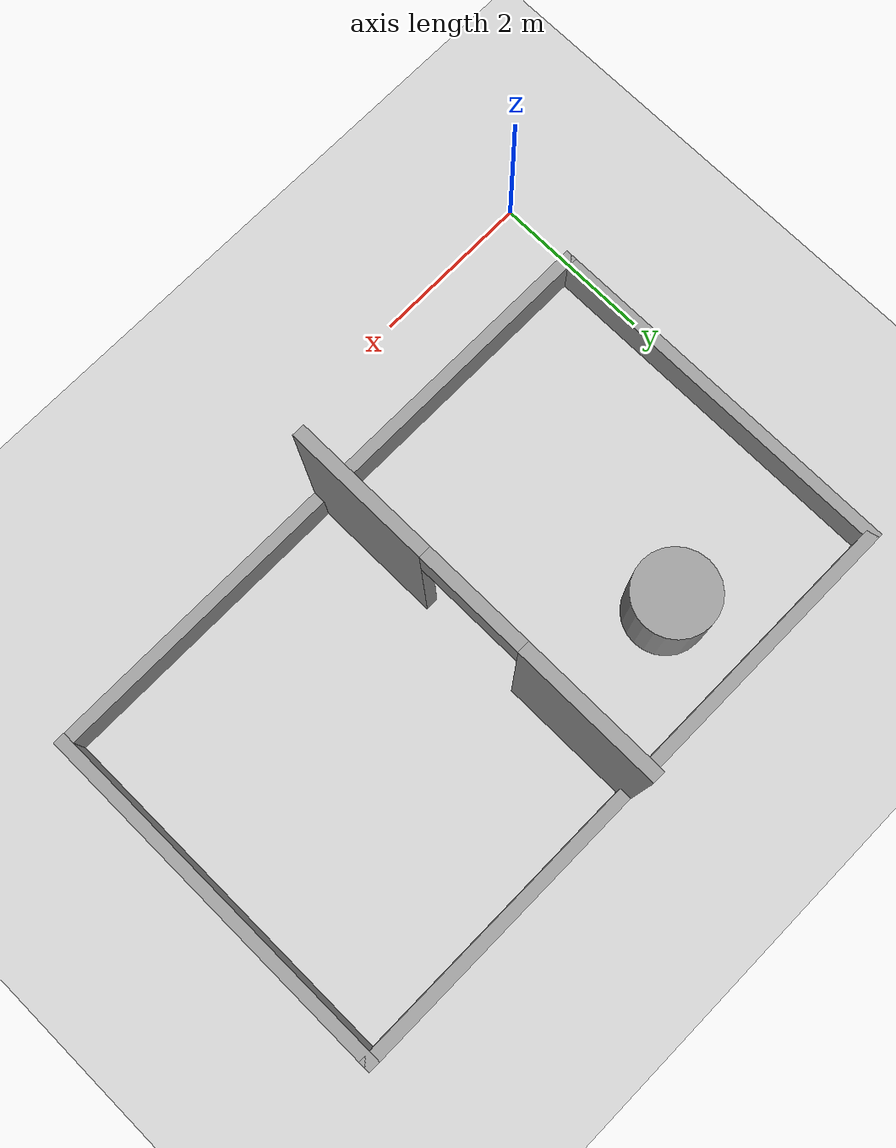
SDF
<sdf version="1.7">
 <world name="default">
  <light name="sun" type="directional">
   <pose>0 0 10 0 -0 0</pose>
   <diffuse>0.8 0.8 0.8 1</diffuse>
   <specular>0.2 0.2 0.2 1</specular>
   <attenuation>
    <range>1000</range>
    <constant>0.9</constant>
    <linear>0.01</linear>
    <quadratic>0.001</quadratic>
   </attenuation>
   <direction>-0.5 0.1 -0.9</direction>
   <spot><inner_angle>0</inner_angle><outer_angle>0</outer_angle><falloff>0</falloff></spot>
  </light>
  <model name="ground_plane">
   <static>1</static>
   <link name="link">
    <collision name="collision">
     <geometry><plane><normal>0 0 1</normal><size>100 100</size></plane></geometry>
     <surface>
      <contact><collide_bitmask>65535</collide_bitmask></contact>
      <friction><ode><mu>100</mu><mu2>50</mu2></ode></friction>
     </surface>
    </collision>
    <visual name="visual">
     <cast_shadows>0</cast_shadows>
     <geometry><plane><normal>0 0 1</normal><size>100 100</size></plane></geometry>
     <material>
      <script><uri>file://media/materials/scripts/gazebo.material</uri><name>Gazebo/Grey</name></script>
     </material>
    </visual>
   </link>
  </model>
  <gravity>0 0 -9.8</gravity>
  <magnetic_field>6e-06 2.3e-05 -4.2e-05</magnetic_field>
  <atmosphere type="adiabatic"/>
  <physics type="ode">
   <max_step_size>0.001</max_step_size>
   <real_time_factor>1</real_time_factor>
   <real_time_update_rate>1000</real_time_update_rate>
  </physics>
  <scene><ambient>0.4 0.4 0.4 1</ambient><background>0.7 0.7 0.7 1</background><shadows>1</shadows></scene>
  <spherical_coordinates>
   <surface_model>EARTH_WGS84</surface_model>
   <latitude_deg>0</latitude_deg>
   <longitude_deg>0</longitude_deg>
   <elevation>0</elevation>
   <heading_deg>0</heading_deg>
  </spherical_coordinates>
  <model name="door_traversal">
   <pose>3.99331 3.31947 0 0 -0 0</pose>
   <link name="Wall_0">
    <collision name="Wall_0_Collision">
     <geometry><box><size>4 0.15 0.5</size></box></geometry>
     <pose>0 0 0.25 0 -0 0</pose>
    </collision>
    <visual name="Wall_0_Visual">
     <pose>0 0 0.25 0 -0 0</pose>
     <geometry><box><size>4 0.15 0.5</size></box></geometry>
     <material>
      <script><uri>file://media/materials/scripts/gazebo.material</uri><name>Gazebo/Grey</name></script>
      <ambient>1 1 1 1</ambient>
     </material>
     <meta><layer>0</layer></meta>
    </visual>
    <pose>-1.925 -2.3 0 0 -0 0</pose>
   </link>
   <link name="Wall_10">
    <collision name="Wall_10_Collision">
     <geometry><box><size>4 0.15 0.5</size></box></geometry>
     <pose>0 0 0.25 0 -0 0</pose>
    </collision>
    <visual name="Wall_10_Visual">
     <pose>0 0 0.25 0 -0 0</pose>
     <geometry><box><size>4 0.15 0.5</size></box></geometry>
     <material>
      <script><uri>file://media/materials/scripts/gazebo.material</uri><name>Gazebo/Grey</name></script>
      <ambient>1 1 1 1</ambient>
     </material>
     <meta><layer>0</layer></meta>
    </visual>
    <pose>1.925 -2.3 0 0 -0 3.14159</pose>
   </link>
   <link name="Wall_11">
    <pose>0 0 0 0 -0 1.5708</pose>
    <visual name="Wall_11_Visual_0">
     <pose>-1.51506 0 1.25 0 -0 0</pose>
     <geometry><box><size>1.71988 0.15 2.5</size></box></geometry>
     <material>
      <script><uri>file://media/materials/scripts/gazebo.material</uri><name>Gazebo/Grey</name></script>
      <ambient>1 1 1 1</ambient>
     </material>
     <meta><layer>0</layer></meta>
    </visual>
    <collision name="Wall_11_Collision_0">
     <geometry><box><size>1.71988 0.15 2.5</size></box></geometry>
     <pose>-1.51506 0 1.25 0 -0 0</pose>
    </collision>
    <visual name="Wall_11_Visual_1">
     <pose>1.50994 0 1.25 0 -0 0</pose>
     <geometry><box><size>1.73012 0.15 2.5</size></box></geometry>
     <material>
      <script><uri>file://media/materials/scripts/gazebo.material</uri><name>Gazebo/Grey</name></script>
      <ambient>1 1 1 1</ambient>
     </material>
     <meta><layer>0</layer></meta>
    </visual>
    <collision name="Wall_11_Collision_1">
     <geometry><box><size>1.73012 0.15 2.5</size></box></geometry>
     <pose>1.50994 0 1.25 0 -0 0</pose>
    </collision>
    <visual name="Wall_11_Visual_2">
     <pose>-0.005122 0 2.25 0 -0 0</pose>
     <geometry><box><size>1.3 0.15 0.5</size></box></geometry>
     <material>
      <script><uri>file://media/materials/scripts/gazebo.material</uri><name>Gazebo/Grey</name></script>
      <ambient>1 1 1 1</ambient>
     </material>
     <meta><layer>0</layer></meta>
    </visual>
    <collision name="Wall_11_Collision_2">
     <geometry><box><size>1.3 0.15 0.5</size></box></geometry>
     <pose>-0.005122 0 2.25 0 -0 0</pose>
    </collision>
   </link>
   <link name="Wall_5">
    <collision name="Wall_5_Collision">
     <geometry><box><size>4.75 0.15 0.5</size></box></geometry>
     <pose>0 0 0.25 0 -0 0</pose>
    </collision>
    <visual name="Wall_5_Visual">
     <pose>0 0 0.25 0 -0 0</pose>
     <geometry><box><size>4.75 0.15 0.5</size></box></geometry>
     <material>
      <script><uri>file://media/materials/scripts/gazebo.material</uri><name>Gazebo/Grey</name></script>
      <ambient>1 1 1 1</ambient>
     </material>
     <meta><layer>0</layer></meta>
    </visual>
    <pose>-3.85 0 0 0 -0 1.5708</pose>
   </link>
   <link name="Wall_7">
    <collision name="Wall_7_Collision">
     <geometry><box><size>4 0.15 0.5</size></box></geometry>
     <pose>0 0 0.25 0 -0 0</pose>
    </collision>
    <visual name="Wall_7_Visual">
     <pose>0 0 0.25 0 -0 0</pose>
     <geometry><box><size>4 0.15 0.5</size></box></geometry>
     <material>
      <script><uri>file://media/materials/scripts/gazebo.material</uri><name>Gazebo/Grey</name></script>
      <ambient>1 1 1 1</ambient>
     </material>
     <meta><layer>0</layer></meta>
    </visual>
    <pose>-1.925 2.3 0 0 -0 0</pose>
   </link>
   <link name="Wall_8">
    <collision name="Wall_8_Collision">
     <geometry><box><size>4 0.15 0.5</size></box></geometry>
     <pose>0 0 0.25 0 -0 0</pose>
    </collision>
    <visual name="Wall_8_Visual">
     <pose>0 0 0.25 0 -0 0</pose>
     <geometry><box><size>4 0.15 0.5</size></box></geometry>
     <material>
      <script><uri>file://media/materials/scripts/gazebo.material</uri><name>Gazebo/Grey</name></script>
      <ambient>1 1 1 1</ambient>
     </material>
     <meta><layer>0</layer></meta>
    </visual>
    <pose>1.925 2.3 0 0 -0 0</pose>
   </link>
   <link name="Wall_9">
    <collision name="Wall_9_Collision">
     <geometry><box><size>4.75 0.15 0.5</size></box></geometry>
     <pose>0 0 0.25 0 -0 0</pose>
    </collision>
    <visual name="Wall_9_Visual">
     <pose>0 0 0.25 0 -0 0</pose>
     <geometry><box><size>4.75 0.15 0.5</size></box></geometry>
     <material>
      <script><uri>file://media/materials/scripts/gazebo.material</uri><name>Gazebo/Grey</name></script>
      <ambient>1 1 1 1</ambient>
     </material>
     <meta><layer>0</layer></meta>
    </visual>
    <pose>3.85 0 0 0 -0 -1.5708</pose>
   </link>
   <static>1</static>
  </model>
  <model name="unit_cylinder">
   <pose>2.23748 4.56208 0.499997 3e-06 -4e-06 0</pose>
   <link name="link">
    <inertial>
     <mass>1</mass>
     <inertia><ixx>0.145833</ixx><ixy>0</ixy><ixz>0</ixz><iyy>0.145833</iyy><iyz>0</iyz><izz>0.125</izz></inertia>
    </inertial>
    <collision name="collision">
     <geometry><cylinder><radius>0.5</radius><length>1</length></cylinder></geometry>
    </collision>
    <visual name="visual">
     <geometry><cylinder><radius>0.5</radius><length>1</length></cylinder></geometry>
     <material>
      <script><name>Gazebo/Grey</name><uri>file://media/materials/scripts/gazebo.material</uri></script>
     </material>
    </visual>
   </link>
  </model>
 </world>
</sdf>
